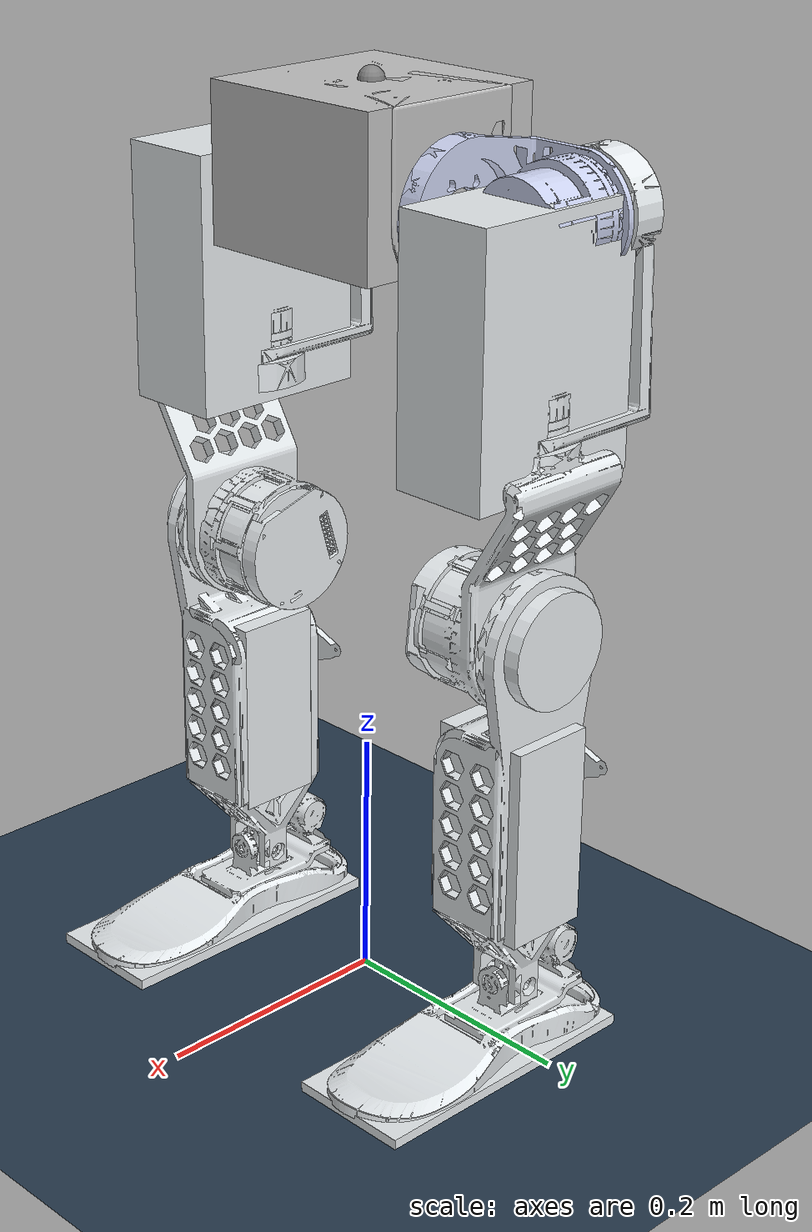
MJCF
<mujoco model="alexbotmini">
    <compiler angle="radian" meshdir="../meshes/"  eulerseq="zyx" />

    <option timestep='0.001' iterations='50' solver='PGS' gravity='0 0 -9.81'>
    <flag sensornoise="enable" frictionloss="enable"/>
    </option>

    <size njmax="500" nconmax="100" />

    <visual>
        <quality shadowsize='4096'/>
        <map znear='0.05'/>
    </visual>
    <default>
        <joint limited='true'/>
        <motor ctrllimited='true'/>
        <geom  condim='4' contype="1" conaffinity="15" solref='0.001 2' friction='0.9 0.2 0.2'/>
        <equality solref='0.001 2'/>
        <default class='leg_joint_param'>
            <joint  damping="0.01" frictionloss="0.01" armature="0.01"/>
        </default>
    </default>
  <statistic meansize="0.164352" extent="1.07561" center="-0.00820016 -1.48012e-05 -0.160784"/>

    <asset>
        <mesh name="base_link" file="base_link.STL" />
        <mesh name="leftlink1" file="leftlink1.STL" />
        <mesh name="leftlink2" file="leftlink2.STL" />
        <mesh name="leftlink3" file="leftlink3.STL" />
        <mesh name="leftlink4" file="leftlink4.STL" />
        <mesh name="leftlink5" file="leftlink5.STL" />
        <mesh name="leftlink6" file="leftlink6.STL" />
        <mesh name="rightlink1" file="rightlink1.STL" />
        <mesh name="rightlink2" file="rightlink2.STL" />
        <mesh name="rightlink3" file="rightlink3.STL" />
        <mesh name="rightlink4" file="rightlink4.STL" />
        <mesh name="rightlink5" file="rightlink5.STL" />
        <mesh name="rightlink6" file="rightlink6.STL" />
        <material name="matplane" reflectance="0.3" texture="texplane" texrepeat="1 1" texuniform="true"/>
        <material name="matgeom" texture="texgeom" texuniform="true" rgba="0.8 0.6 .4 1"/>
        <texture name="texplane" type="2d" builtin="checker" rgb1=".2 .3 .4" rgb2=".1 0.15 0.2" width="512" height="512" mark="cross" markrgb=".8 .8 .8"/>
        <texture name="texgeom" type="cube" builtin="flat" mark="cross" width="127" height="1278" rgb1="0.8 0.6 0.4" rgb2="0.8 0.6 0.4" markrgb="1 1 1" random="0.01"/>
        <texture type="skybox" builtin="gradient" rgb1="1 1 1" rgb2=".6 .8 1" width="256" height="256"/>
    </asset>

    <worldbody>
        <light directional="true" diffuse=".4 .4 .4" specular="0.1 0.1 0.1" pos="0 0 5.0" dir="0 0 -1" castshadow="false"/>
        <light directional="true" diffuse=".6 .6 .6" specular="0.2 0.2 0.2" pos="0 0 4" dir="0 0 -1"/>
        <geom name="ground" type="plane" size="0 0 1" pos="0.001 0 0" quat="1 0 0 0" material="matplane" condim="1" conaffinity='15'/>
        <body name="base_link" pos="0 0 0.72">
            <inertial pos="-5.403e-06 0.00054897 -0.042272" quat="0.99965 0.025389 -0.00023109 -0.00745309" mass="3.703" diaginertia="0.0394207 0.0253231 0.0208888" />

            <joint name="floating_base_joint" type="free" limited="false" />
            <site name='imu' size='0.01' pos='0.0 0 0.0' quat='1 0 0 0'/>

            <geom type="mesh" contype="0" conaffinity="0" group="1" rgba="0.75294 0.75294 0.75294 1" mesh="base_link" />
            <geom size="0.08 0.08 0.06" pos="0 0 -0.06" type="box" rgba="0.75294 0.75294 0.75294 1" />
            <body name="leftlink1" pos="0 0.091 -0.08">
                <inertial pos="-0.021825 0.017592 6.1019e-06" quat="0.486808 0.505576 -0.493264 0.513908" mass="1.30624" diaginertia="0.00421885 0.00404898 0.00190957" />
                <joint name="leftjoint1" pos="0 0 0" axis="0 1 0" limited="true" range="-1 1" />
                <geom type="mesh" contype="0" conaffinity="0" group="1" rgba="0.79216 0.81961 0.93333 1" mesh="leftlink1" />
                <body name="leftlink2" pos="-0.0816 0.052 -0.0002344">
                    <inertial pos="0.014318 8.5098e-07 -0.072113" quat="0.679499 -0.194168 -0.194243 0.680331" mass="1.75604" diaginertia="0.0191693 0.0173958 0.00386757" />
                    <joint name="leftjoint2" pos="0 0 0" axis="-1 0 0" limited="true" range="-1 1" />
                    <geom type="mesh" contype="0" conaffinity="0" group="1" rgba="0.89804 0.91765 0.92941 1" mesh="leftlink2" />
                    <geom size="0.075 0.04 0.1" pos="0.08 0 -0.08" type="box" rgba="0.89804 0.91765 0.92941 1" />
                    <body name="leftlink3" pos="0.078 0 -0.15861">
                        <inertial pos="-0.00024643 0.0080676 -0.048991" quat="0.990627 -0.0414572 0.00527361 0.130045" mass="2.11496" diaginertia="0.0347786 0.0344557 0.00375969" />
                        <joint name="leftjoint3" pos="0 0 0" axis="0 0 -1" limited="true" range="-1 1" />
                        <geom type="mesh" contype="0" conaffinity="0" group="1" rgba="0.89804 0.91765 0.92941 1" mesh="leftlink3" />
                        <geom size="0.045 0.05" pos="0 0 -0.14" quat="0.707388 0.706825 0 0" type="cylinder" rgba="0.89804 0.91765 0.92941 1" />
                        <body name="leftlink4" pos="0 0.027 -0.142">
                            <inertial pos="-0.0054767 -0.017536 -0.11984" quat="0.698105 -0.0377389 0.0624439 0.712268" mass="2.17494" diaginertia="0.05352 0.052476 0.00248022" />
                            <joint name="leftjoint4" pos="0 0 0" axis="0 1 0" limited="true" range="-1 1" />
                            <geom type="mesh" contype="0" conaffinity="0" group="1" rgba="0.89804 0.91765 0.92941 1" mesh="leftlink4" />
                            <geom size="0.035 0.04 0.08" pos="0 -0.02 -0.15" type="box" rgba="0.89804 0.91765 0.92941 1" />
                            <body name="leftlink5" pos="-0.0062437 -0.023 -0.289">
                                <inertial pos="-1.2466e-08 -1.3708e-08 0" quat="0.707107 0.707107 0 0" mass="0.017311" diaginertia="1.816e-06 1.529e-06 1.28e-06" />
                                <joint name="leftjoint5" pos="0 0 0" axis="0 -1 0" limited="true" range="-1 1" />
                                <geom type="mesh" contype="0" conaffinity="0" group="1" rgba="0.89804 0.91765 0.92941 1" mesh="leftlink5" />
                                <body name="leftlink6" pos="0 0 0">
                                    <inertial pos="0.029447 0.0002491 -0.034298" quat="0.411252 0.576314 0.56879 0.418582" mass="0.5" diaginertia="0.00321906 0.0030106 0.000696947" />
                                    <joint name="leftjoint6" pos="0 0 0" axis="1 0 0" limited="true" range="-1 1" />
                                    <geom type="mesh" contype="0" conaffinity="0" group="1" rgba="0.89804 0.91765 0.92941 1" mesh="leftlink6" />
                                    <geom size="0.05 0.12 0.005" pos="0.05 0 -0.048" quat="0.707388 0 0 0.706825" type="box" rgba="0.89804 0.91765 0.92941 1" />
                                </body>
                            </body>
                        </body>
                    </body>
                </body>
            </body>
            <body name="rightlink1" pos="0 -0.089 -0.08">
                <inertial pos="-0.021825 -0.017467 1.1831e-05" quat="0.512035 0.484981 -0.512994 0.489338" mass="1.30624" diaginertia="0.0041748 0.00400505 0.00190547" />
                <joint name="rightjoint1" pos="0 0 0" axis="0 -1 0" limited="true" range="-1 1" />
                <geom type="mesh" contype="0" conaffinity="0" group="1" rgba="0.79216 0.81961 0.93333 1" mesh="rightlink1" />
                <body name="rightlink2" pos="-0.0816 -0.052 0.0002344">
                    <inertial pos="0.014349 -3.4419e-05 -0.072113" quat="0.676733 -0.195112 -0.193511 0.68302" mass="1.75604" diaginertia="0.0191785 0.0174116 0.00388646" />
                    <joint name="rightjoint2" pos="0 0 0" axis="-1 0 0" limited="true" range="-1 1" />
                    <geom type="mesh" contype="0" conaffinity="0" group="1" rgba="0.89804 0.91765 0.92941 1" mesh="rightlink2" />
                    <geom size="0.075 0.04 0.1" pos="0.08 0 -0.08" type="box" rgba="0.89804 0.91765 0.92941 1" />
                    <body name="rightlink3" pos="0.078 0 -0.15861">
                        <inertial pos="7.7184e-05 -0.0080763 -0.048796" quat="0.988102 0.0418912 0.00644611 -0.147845" mass="2.115" diaginertia="0.0347216 0.0343664 0.00373375" />
                        <joint name="rightjoint3" pos="0 0 0" axis="0 0 -1" limited="true" range="-1 1" />
                        <geom type="mesh" contype="0" conaffinity="0" group="1" rgba="0.89804 0.91765 0.92941 1" mesh="rightlink3" />
                        <geom size="0.045 0.05" pos="0 0 -0.14" quat="0.707388 0.706825 0 0" type="cylinder" rgba="0.89804 0.91765 0.92941 1" />
                        <body name="rightlink4" pos="0 -0.027 -0.142">
                           <inertial pos="-0.00548131 0.0175314 -0.119816" quat="0.697329 -0.0374299 0.0622874 0.713058" mass="2.17494" diaginertia="0.0534854 0.0524539 0.0024926" />
                            <joint name="rightjoint4" pos="0 0 0" axis="0 -1 0" limited="true" range="-1 1" />
                            <geom type="mesh" contype="0" conaffinity="0" group="1" rgba="0.898039 0.917647 0.929412 1" mesh="rightlink4" />
                            <geom size="0.035 0.04 0.08" pos="0 0.02 -0.15" type="box" rgba="0.898039 0.917647 0.929412 1" />
                            <body name="rightlink5" pos="-0.0062206 0.025 -0.289">
                                <inertial pos="2.0918e-06 3.5218e-08 2.6626e-09" quat="0.707114 0.7071 -1.25421e-05 7.44322e-06" mass="0.017311" diaginertia="1.8715e-06 1.5845e-06 1.3811e-06" />
                                <joint name="rightjoint5" pos="0 0 0" axis="0 1 0" limited="true" range="-1 1" />
                                <geom type="mesh" contype="0" conaffinity="0" group="1" rgba="0.89804 0.91765 0.92941 1" mesh="rightlink5" />
                                <body name="rightlink6" pos="0 0 0">
                                    <inertial pos="0.022759 -0.00027434 -0.031905" quat="0.420318 0.564909 0.57921 0.410764" mass="0.5" diaginertia="0.00304561 0.00284207 0.000663827" />
                                    <joint name="rightjoint6" pos="0 0 0" axis="-1 0 0" limited="true" range="-1 1" />
                                    <geom type="mesh" contype="0" conaffinity="0" group="1" rgba="0.89804 0.91765 0.92941 1" mesh="rightlink6" />
                                    <geom size="0.05 0.12 0.005" pos="0.05 0 -0.048" quat="0.707388 0 0 0.706825" type="box" rgba="0.89804 0.91765 0.92941 1" />
                                </body>
                            </body>
                        </body>
                    </body>
                </body>
            </body>
        </body>
    </worldbody>

    <actuator>
    <!-- Left Side -->
    <motor name="leftjoint1" joint="leftjoint1" gear="1" ctrllimited="true" ctrlrange="-96 96"/>
    <motor name="leftjoint2" joint="leftjoint2" gear="1" ctrllimited="true" ctrlrange="-51 51"/>
    <motor name="leftjoint3" joint="leftjoint3" gear="1" ctrllimited="true" ctrlrange="-51 51"/>
    <motor name="leftjoint4" joint="leftjoint4" gear="1" ctrllimited="true" ctrlrange="-96 96"/>
    <motor name="leftjoint5" joint="leftjoint5" gear="1" ctrllimited="true" ctrlrange="-30 30"/>
    <motor name="leftjoint6" joint="leftjoint6" gear="1" ctrllimited="true" ctrlrange="-30 30"/>

    <!-- Right Side -->
    <motor name="rightjoint1" joint="rightjoint1" gear="1" ctrllimited="true" ctrlrange="-96 96"/>
    <motor name="rightjoint2" joint="rightjoint2" gear="1" ctrllimited="true" ctrlrange="-51 51"/>
    <motor name="rightjoint3" joint="rightjoint3" gear="1" ctrllimited="true" ctrlrange="-51 51"/>
    <motor name="rightjoint4" joint="rightjoint4" gear="1" ctrllimited="true" ctrlrange="-96 96"/>
    <motor name="rightjoint5" joint="rightjoint5" gear="1" ctrllimited="true" ctrlrange="-30 30"/>
    <motor name="rightjoint6" joint="rightjoint6" gear="1" ctrllimited="true" ctrlrange="-30 30"/>
    </actuator>

    <sensor>

      <framequat     name='orientation' objtype='site' noise='0.001' objname='imu'/>
      <framepos     name='position' objtype='site' noise='0.001' objname='imu'/>
      <gyro          name='angular-velocity'    site='imu' noise='0.005' cutoff='34.9'/>
      <velocimeter   name='linear-velocity'     site='imu' noise='0.001' cutoff='30'/>
      <accelerometer name='linear-acceleration' site='imu' noise='0.005' cutoff='157'/>
      <magnetometer  name='magnetometer'        site='imu'/>

    </sensor>

</mujoco>
